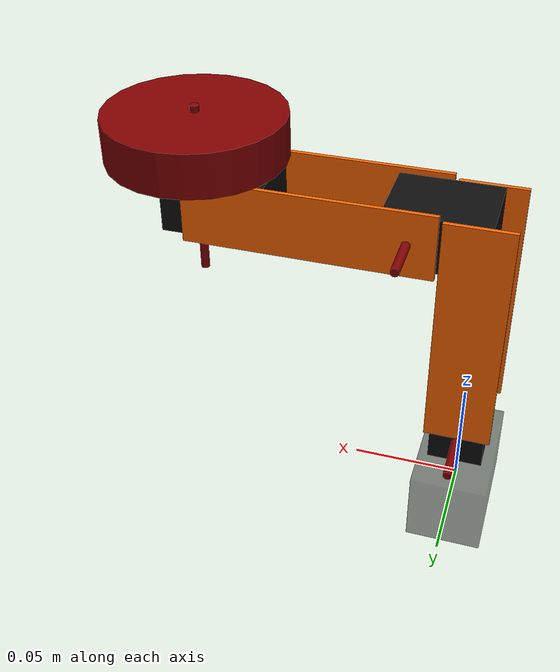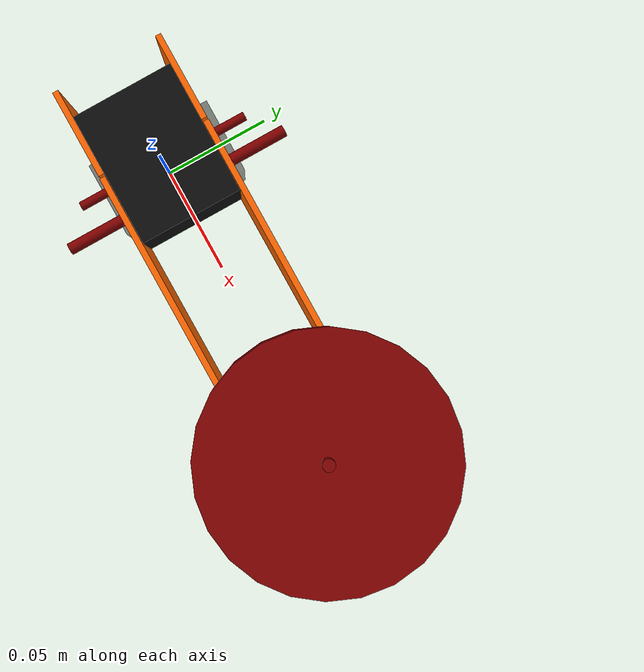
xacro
<?xml version="1.0"?>
<!-- Minimal 2-servo arm, all joints rotate around X axis -->
<robot xmlns:xacro="http://www.ros.org/wiki/xacro" name="two_servo_simple">

    <!-- Declare prefix argument (default empty) -->
    <xacro:arg name="prefix" default="" />

    <!-- Parameters -->
    <xacro:property name="servo_size" value="0.025 0.035 0.0455" />
    <xacro:property name="plate_size" value="0.03 0.002 0.110" />

    <!-- Materials -->
    <material name="black">
        <color rgba="0.05 0.05 0.05 1.0" />
    </material>
    <material name="black_tr">
        <color rgba="0.05 0.05 0.05 0.5" />
    </material>
    <material name="red">
        <color rgba="0.5 0.00 0.00 1.0" />
    </material>
    <material name="orange">
        <color rgba="1.0 0.4 0.0 1.0" />
    </material>

    <!-- Base box              -->
    <link name="base_link">
        <visual>
            <geometry>
                <box size="0.035 0.06 0.035" />
            </geometry>
            <material name="black_tr" />
        </visual>
    </link>
    <!-- Base axis (dummy) -->
    <link name="base_axis">
        <visual>
            <geometry>
                <cylinder radius="0.002" length="0.08" />
            </geometry>
            <material name="red" />
        </visual>
    </link>

    <joint name="base_axis_to_base_link" type="fixed">
        <parent link="base_link" />
        <child link="base_axis" />
        <!-- offset so rotation is not through servo center -->
        <origin xyz="0 0 0.035" rpy="-1.570796327 0 0" />
    </joint>
    <!-- Servo 1 axis (dummy) -->
    <link name="servo_1_axis">
        <visual>
            <geometry>
                <cylinder radius="0.002" length="0.08" />
            </geometry>
            <material name="red" />
        </visual>
    </link>

    <joint name="joint1" type="revolute">
        <parent link="base_axis" />
        <child link="servo_1_axis" />
        <!-- offset so rotation is not through servo center -->
        <origin xyz="0. 0 0" rpy="0 0 0" />
        <axis xyz="0 0 1" />
        <limit lower="-1.57" upper="1.57" effort="1" velocity="1" />
    </joint>
    <!-- Servo 1               -->
    <link name="servo_1">
        <visual>
            <geometry>
                <box size="${servo_size}" />
            </geometry>
            <material name="black" />
        </visual>
    </link>

    <joint name="base_to_servo_1" type="fixed">
        <parent link="servo_1_axis" />
        <child link="servo_1" />
        <!-- mounted on the side of the base -->
        <origin xyz="0.00 -0.011375 0.0" rpy="1.570796327 0 0" />
        <axis xyz="0 1 0" />
        <limit lower="-1.57" upper="1.57" effort="1" velocity="1" />
    </joint>

    <!-- Plate 1 (side-mounted) -->
    <link name="plate_1">
        <visual>
            <geometry>
                <box size="${plate_size}" />
            </geometry>
            <material name="orange" />
        </visual>
    </link>

    <joint name="servo_1_to_plate_1" type="fixed">
        <parent link="servo_1" />
        <child link="plate_1" />
        <!-- plate flush with servo side (sandwich-style) -->
        <origin xyz="0.0 0.0185 0.0475" rpy="0 0 0" />
    </joint>

    <!-- Plate 2 (side-mounted) -->
    <link name="plate_2">
        <visual>
            <geometry>
                <box size="${plate_size}" />
            </geometry>
            <material name="orange" />
        </visual>
    </link>

    <joint name="servo_1_to_plate_2" type="fixed">
        <parent link="servo_1" />
        <child link="plate_2" />
        <!-- plate flush with servo side (sandwich-style) -->
        <origin xyz="0 -0.0185 0.0475" rpy="0 0 0" />
    </joint>

    <!-- Servo 2               -->
    <link name="servo_2">
        <visual>
            <geometry>
                <box size="${servo_size}" />
            </geometry>
            <material name="black" />
        </visual>
    </link>

    <joint name="plate_1_to_servo_2" type="fixed">
        <parent link="plate_1" />
        <child link="servo_2" />
        <origin xyz="0.0175 -0.0185 0.0425" rpy="0 -1.570796327 0" />
    </joint>

    <!-- Servo 2 axis (dummy) -->
    <link name="servo_2_axis">
        <visual>
            <geometry>
                <cylinder radius="0.002" length="0.08" />
            </geometry>
            <material name="red" />
        </visual>
    </link>

    <joint name="servo_2_axis_to_servo_2" type="fixed">
        <parent link="servo_2" />
        <child link="servo_2_axis" />
        <!-- offset so rotation is not through servo center -->
        <origin xyz="0 0 -0.011375" rpy="-1.570796327 0 0" />
    </joint>

    <!-- Plate 3 (side-mounted) -->
    <link name="plate_3">
        <visual>
            <geometry>
                <box size="${plate_size}" />
            </geometry>
            <material name="orange" />
        </visual>
    </link>

    <joint name="plate_3_axis_to_plate_3" type="fixed">
        <parent link="plate_3_axis" />
        <child link="plate_3" />
        <origin xyz="-0.0425 0 0.0185" rpy="-1.570796327 0 -1.570796327" />
    </joint>
    <!-- Servo 3               -->
    <link name="servo_3">
        <visual>
            <geometry>
                <box size="${servo_size}" />
            </geometry>
            <material name="black" />
        </visual>
    </link>

    <joint name="plate_3_to_servo_3" type="fixed">
        <parent link="plate_3" />
        <child link="servo_3" />
        <origin xyz="0 0.0185 -0.0425" rpy="0 0 0" />
    </joint>
    !-- ===================== -->
    <!-- Plate 4 (side-mounted) -->
    <link name="plate_4">
        <visual>
            <geometry>
                <box size="${plate_size}" />
            </geometry>
            <material name="orange" />
        </visual>
    </link>

    <joint name="servo_3_axis_to_plate_4" type="fixed">
        <parent link="servo_3" />
        <child link="plate_4" />
        <origin xyz="0 0.0185 0.0425" rpy="0 0 0" />
    </joint>

    <!-- Servo 3 axis (dummy) -->
    <link name="servo_3_axis">
        <visual>
            <geometry>
                <cylinder radius="0.002" length="0.08" />
            </geometry>
            <material name="red" />
        </visual>
    </link>

    <joint name="servo_3_to_servo_3_axis" type="fixed">
        <parent link="servo_3" />
        <child link="servo_3_axis" />
        <!-- offset so rotation is not through servo center -->
        <origin xyz="0.00 0 -0.01137" rpy="0 -1.570796327 0" />
    </joint>

    <!-- Plate 3 axis (dummy) -->
    <link name="plate_3_axis">
        <visual>
            <geometry>
                <cylinder radius="0.002" length="0.08" />
            </geometry>
            <material name="red" />
        </visual>
    </link>

    <joint name="joint2" type="revolute">
        <parent link="servo_2_axis" />
        <child link="plate_3_axis" />
        <!-- offset so rotation is not through servo center -->
        <origin xyz="0.00 0 0.00" rpy="0 0 -1.570796327" />
        <axis xyz="0 0 1" />
        <limit lower="-1.57" upper="1.57" effort="1" velocity="1" />
    </joint>

    <!-- Gripper Gear (dummy) -->
    <link name="gripper_gear">
        <visual>
            <geometry>
                <cylinder radius="0.04" length="0.02" />
            </geometry>
            <material name="red" />
        </visual>
    </link>

    <joint name="joint3" type="revolute">
        <parent link="servo_3_axis" />
        <child link="gripper_gear" />
        <!-- offset so rotation is not through servo center -->
        <origin xyz="0.00 0 0.027" rpy="0 0 -1.570796327" />
        <axis xyz="0 0 1" />
        <limit lower="-1.57" upper="1.57" effort="1" velocity="1" />
    </joint>

    <xacro:include filename="$(find waveshare_servos)/description/ros2_control/crawler_arm.ros2_control.xacro"/>

    <xacro:crawler_arm_ws_ros2_control name="crawler_arm_ws_ros2_control" prefix="$(arg prefix)"/>

</robot>
